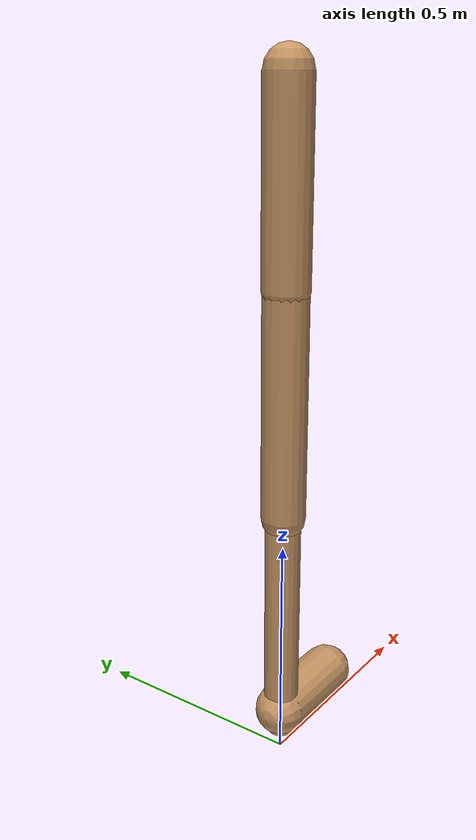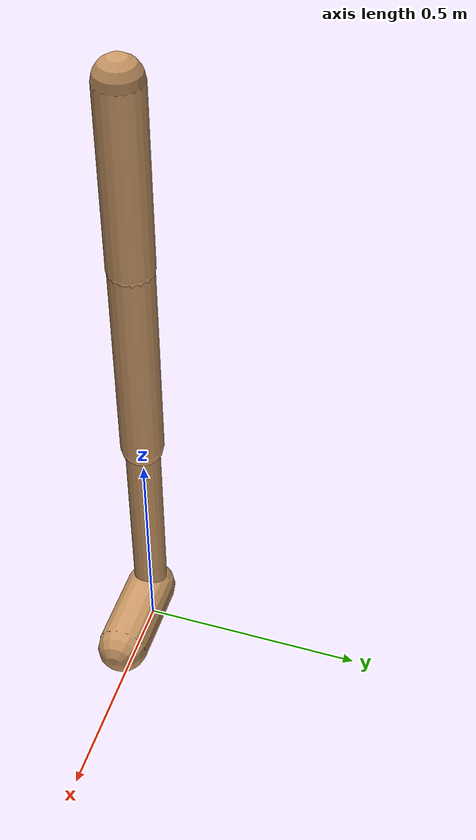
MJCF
<mujoco model="walker2d">
  <compiler angle="degree" coordinate="global" inertiafromgeom="true" />
  <default>
    <joint armature="0.01" damping=".1" limited="true" />
    <geom conaffinity="0" condim="3" contype="1" density="1000" friction="0.8 .1 .1" rgba="0.8 0.6 .4 1" />
  </default>
  <option integrator="RK4" timestep="0.002" />
  <worldbody>

    <body name="torso" pos="0 0 0.05592678583224194">
      <joint armature="0" axis="1 0 0" damping="0" limited="false" name="ignorex" pos="0 0 0" stiffness="0" type="slide" />
      <joint armature="0" axis="0 0 1" damping="0" limited="false" name="ignorez" pos="0 0 0" ref="1.25" stiffness="0" type="slide" />
      <joint armature="0" axis="0 1 0" damping="0" limited="false" name="ignorey" pos="0 0 0" stiffness="0" type="hinge" />
      <geom fromto="0 0 1.45 0 0 1.05" name="torso_geom" size="0.049097450327101486" type="capsule" />
      <body name="thigh">
        <joint axis="0 -1 0" name="thigh_joint" pos="0 0 1.05" range="-150 0" type="hinge" />
        <geom fromto="0.0 0.0 1.05 0.0 0.0 0.5735083646057801" name="thigh_geom" size="0.04732598383659025" type="capsule" />
        <body name="leg" pos="0.0 0.0 -0.026491635394219837">
          <joint axis="0 -1 0" name="leg_joint" pos="0 0 0.6" range="-150 0" type="hinge" />
          <geom fromto="0.0 0.0 0.6 0.0 0.0 0.07056484956197794" name="leg_geom" size="0.0378607870692722" type="capsule" />
          <body name="foot" pos="0.0 0.0 -0.02943515043802207">
            <joint axis="0 -1 0" name="foot_joint" pos="0 0 0.1" range="-45 45" type="hinge" />
            <geom fromto="0.0 0.0 0.09999999999999999 0.19305566763338722 0.0 0.09999999999999999" name="foot_geom" size="0.05678109685002036" type="capsule" />
          </body>
        </body>
      </body>

      <body name="thigh_left">
        <joint axis="0 -1 0" name="thigh_left_joint" pos="0 0 1.05" range="-150 0" type="hinge" />
        <geom fromto="0.0 0.0 1.05 0.0 0.0 0.5735083646057801" name="thigh_left_geom" rgba=".7 .3 .6 1" size="0.04732598383659025" type="capsule" />
        <body name="leg_left" pos="0.0 0.0 -0.026491635394219837">
          <joint axis="0 -1 0" name="leg_left_joint" pos="0 0 0.6" range="-150 0" type="hinge" />
          <geom fromto="0.0 0.0 0.6 0.0 0.0 0.07056484956197794" name="leg_left_geom" rgba=".7 .3 .6 1" size="0.0378607870692722" type="capsule" />
          <body name="foot_left" pos="0.0 0.0 -0.02943515043802207">
            <joint axis="0 -1 0" name="foot_left_joint" pos="0 0 0.1" range="-45 45" type="hinge" />
            <geom fromto="0.0 0.0 0.09999999999999999 0.19305566763338722 0.0 0.09999999999999999" name="foot_left_geom" rgba=".7 .3 .6 1" size="0.05678109685002036" type="capsule" />
          </body>
        </body>
      </body>
    </body>
  </worldbody>
  <actuator>

    <motor ctrllimited="true" ctrlrange="-1.0 1.0" gear="100" joint="thigh_joint" />
    <motor ctrllimited="true" ctrlrange="-1.0 1.0" gear="100" joint="leg_joint" />
    <motor ctrllimited="true" ctrlrange="-1.0 1.0" gear="100" joint="foot_joint" />
    <motor ctrllimited="true" ctrlrange="-1.0 1.0" gear="100" joint="thigh_left_joint" />
    <motor ctrllimited="true" ctrlrange="-1.0 1.0" gear="100" joint="leg_left_joint" />
    <motor ctrllimited="true" ctrlrange="-1.0 1.0" gear="100" joint="foot_left_joint" />

  </actuator>
</mujoco>
